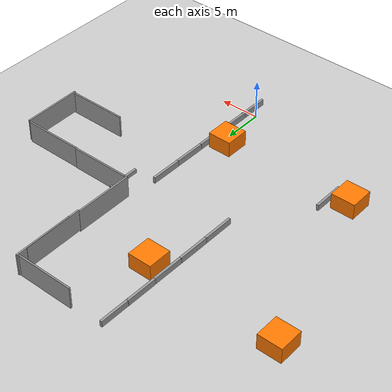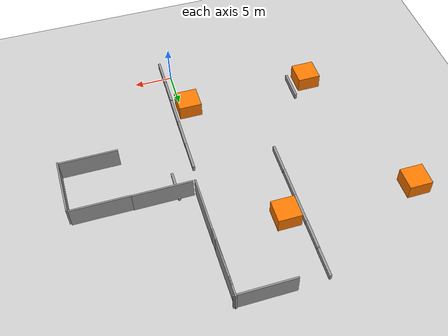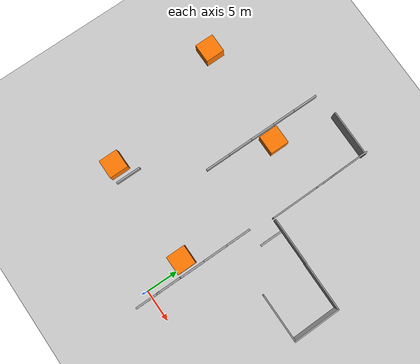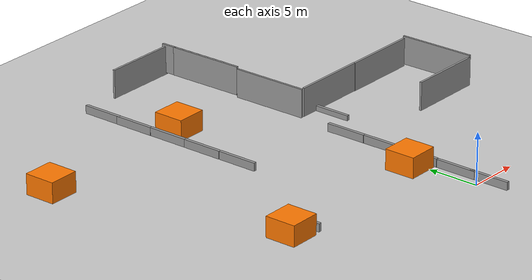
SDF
<sdf version="1.7">
 <world name="default">
  <model name="ground_plane">
   <static>1</static>
   <link name="link">
    <collision name="collision">
     <geometry><plane><normal>0 0 1</normal><size>100 100</size></plane></geometry>
     <surface><friction><ode><mu>100</mu><mu2>50</mu2></ode></friction></surface>
    </collision>
    <visual name="visual">
     <cast_shadows>0</cast_shadows>
     <geometry><plane><normal>0 0 1</normal><size>100 100</size></plane></geometry>
     <material>
      <script><uri>file://media/materials/scripts/gazebo.material</uri><name>Gazebo/Grey</name></script>
     </material>
    </visual>
   </link>
  </model>
  <model name="factory_machines">
   <link name="link_0">
    <inertial>
     <mass>1</mass>
     <inertia>
      <ixx>0.166667</ixx>
      <ixy>0</ixy>
      <ixz>0</ixz>
      <iyy>0.166667</iyy>
      <iyz>0</iyz>
      <izz>0.166667</izz>
     </inertia>
    </inertial>
    <pose>5.10465 10.3846 0 0 -0 0</pose>
    <visual name="visual">
     <geometry><box><size>3 3 2</size></box></geometry>
     <material>
      <lighting>1</lighting>
      <script><uri>file://media/materials/scripts/gazebo.material</uri><name>Gazebo/Grey</name></script>
      <shader type="pixel"><normal_map>__default__</normal_map></shader>
      <ambient>1 0.471 0 1</ambient>
      <diffuse>0.7 0.7 0.7 1</diffuse>
      <specular>0.01 0.01 0.01 1</specular>
      <emissive>0 0 0 1</emissive>
     </material>
    </visual>
    <collision name="collision">
     <geometry><box><size>3 3 2</size></box></geometry>
     <surface>
      <friction>
       <ode><mu>1</mu><mu2>1</mu2><fdir1>0 0 0</fdir1><slip1>0</slip1><slip2>0</slip2></ode>
       <torsional>
        <coefficient>1</coefficient>
        <patch_radius>0</patch_radius>
        <surface_radius>0</surface_radius>
        <use_patch_radius>1</use_patch_radius>
        <ode><slip>0</slip></ode>
       </torsional>
      </friction>
      <bounce><restitution_coefficient>0</restitution_coefficient><threshold>1e+06</threshold></bounce>
      <contact>
       <collide_without_contact>0</collide_without_contact>
       <collide_without_contact_bitmask>1</collide_without_contact_bitmask>
       <collide_bitmask>1</collide_bitmask>
       <ode>
        <soft_cfm>0</soft_cfm>
        <soft_erp>0.2</soft_erp>
        <kp>1e+13</kp>
        <kd>1</kd>
        <max_vel>0.01</max_vel>
        <min_depth>0</min_depth>
       </ode>
       <bullet>
        <split_impulse>1</split_impulse>
        <split_impulse_penetration_threshold>-0.01</split_impulse_penetration_threshold>
        <soft_cfm>0</soft_cfm>
        <soft_erp>0.2</soft_erp>
        <kp>1e+13</kp>
        <kd>1</kd>
       </bullet>
      </contact>
     </surface>
    </collision>
   </link>
   <link name="link_0_clone">
    <inertial>
     <mass>1</mass>
     <inertia>
      <ixx>0.166667</ixx>
      <ixy>0</ixy>
      <ixz>0</ixz>
      <iyy>0.166667</iyy>
      <iyz>0</iyz>
      <izz>0.166667</izz>
     </inertia>
    </inertial>
    <pose>11.7 -10.343 0 0 -0 0</pose>
    <visual name="visual">
     <geometry><box><size>3 3 2</size></box></geometry>
     <material>
      <lighting>1</lighting>
      <script><uri>file://media/materials/scripts/gazebo.material</uri><name>Gazebo/Grey</name></script>
      <shader type="pixel"><normal_map>__default__</normal_map></shader>
      <ambient>1 0.471 0 1</ambient>
      <diffuse>0.7 0.7 0.7 1</diffuse>
      <specular>0.01 0.01 0.01 1</specular>
      <emissive>0 0 0 1</emissive>
     </material>
    </visual>
    <collision name="collision">
     <geometry><box><size>3 3 2</size></box></geometry>
     <surface>
      <friction>
       <ode><mu>1</mu><mu2>1</mu2><fdir1>0 0 0</fdir1><slip1>0</slip1><slip2>0</slip2></ode>
       <torsional>
        <coefficient>1</coefficient>
        <patch_radius>0</patch_radius>
        <surface_radius>0</surface_radius>
        <use_patch_radius>1</use_patch_radius>
        <ode><slip>0</slip></ode>
       </torsional>
      </friction>
      <bounce><restitution_coefficient>0</restitution_coefficient><threshold>1e+06</threshold></bounce>
      <contact>
       <collide_without_contact>0</collide_without_contact>
       <collide_without_contact_bitmask>1</collide_without_contact_bitmask>
       <collide_bitmask>1</collide_bitmask>
       <ode>
        <soft_cfm>0</soft_cfm>
        <soft_erp>0.2</soft_erp>
        <kp>1e+13</kp>
        <kd>1</kd>
        <max_vel>0.01</max_vel>
        <min_depth>0</min_depth>
       </ode>
       <bullet>
        <split_impulse>1</split_impulse>
        <split_impulse_penetration_threshold>-0.01</split_impulse_penetration_threshold>
        <soft_cfm>0</soft_cfm>
        <soft_erp>0.2</soft_erp>
        <kp>1e+13</kp>
        <kd>1</kd>
       </bullet>
      </contact>
     </surface>
    </collision>
   </link>
   <link name="link_0_clone_0">
    <inertial>
     <mass>1</mass>
     <inertia>
      <ixx>0.166667</ixx>
      <ixy>0</ixy>
      <ixz>0</ixz>
      <iyy>0.166667</iyy>
      <iyz>0</iyz>
      <izz>0.166667</izz>
     </inertia>
    </inertial>
    <pose>-5.21258 -10.6315 0 0 -0 0</pose>
    <visual name="visual">
     <geometry><box><size>3 3 2</size></box></geometry>
     <material>
      <lighting>1</lighting>
      <script><uri>file://media/materials/scripts/gazebo.material</uri><name>Gazebo/Grey</name></script>
      <shader type="pixel"><normal_map>__default__</normal_map></shader>
      <ambient>1 0.471 0 1</ambient>
      <diffuse>0.7 0.7 0.7 1</diffuse>
      <specular>0.01 0.01 0.01 1</specular>
      <emissive>0 0 0 1</emissive>
     </material>
    </visual>
    <collision name="collision">
     <geometry><box><size>3 3 2</size></box></geometry>
     <surface>
      <friction>
       <ode><mu>1</mu><mu2>1</mu2><fdir1>0 0 0</fdir1><slip1>0</slip1><slip2>0</slip2></ode>
       <torsional>
        <coefficient>1</coefficient>
        <patch_radius>0</patch_radius>
        <surface_radius>0</surface_radius>
        <use_patch_radius>1</use_patch_radius>
        <ode><slip>0</slip></ode>
       </torsional>
      </friction>
      <bounce><restitution_coefficient>0</restitution_coefficient><threshold>1e+06</threshold></bounce>
      <contact>
       <collide_without_contact>0</collide_without_contact>
       <collide_without_contact_bitmask>1</collide_without_contact_bitmask>
       <collide_bitmask>1</collide_bitmask>
       <ode>
        <soft_cfm>0</soft_cfm>
        <soft_erp>0.2</soft_erp>
        <kp>1e+13</kp>
        <kd>1</kd>
        <max_vel>0.01</max_vel>
        <min_depth>0</min_depth>
       </ode>
       <bullet>
        <split_impulse>1</split_impulse>
        <split_impulse_penetration_threshold>-0.01</split_impulse_penetration_threshold>
        <soft_cfm>0</soft_cfm>
        <soft_erp>0.2</soft_erp>
        <kp>1e+13</kp>
        <kd>1</kd>
       </bullet>
      </contact>
     </surface>
    </collision>
   </link>
   <link name="link_0_clone_1">
    <inertial>
     <mass>1</mass>
     <inertia>
      <ixx>0.166667</ixx>
      <ixy>0</ixy>
      <ixz>0</ixz>
      <iyy>0.166667</iyy>
      <iyz>0</iyz>
      <izz>0.166667</izz>
     </inertia>
    </inertial>
    <pose>-11.592 10.59 0 0 -0 0</pose>
    <visual name="visual">
     <geometry><box><size>3 3 2</size></box></geometry>
     <material>
      <lighting>1</lighting>
      <script><uri>file://media/materials/scripts/gazebo.material</uri><name>Gazebo/Grey</name></script>
      <shader type="pixel"><normal_map>__default__</normal_map></shader>
      <ambient>1 0.471 0 1</ambient>
      <diffuse>0.7 0.7 0.7 1</diffuse>
      <specular>0.01 0.01 0.01 1</specular>
      <emissive>0 0 0 1</emissive>
     </material>
    </visual>
    <collision name="collision">
     <geometry><box><size>3 3 2</size></box></geometry>
     <surface>
      <friction>
       <ode><mu>1</mu><mu2>1</mu2><fdir1>0 0 0</fdir1><slip1>0</slip1><slip2>0</slip2></ode>
       <torsional>
        <coefficient>1</coefficient>
        <patch_radius>0</patch_radius>
        <surface_radius>0</surface_radius>
        <use_patch_radius>1</use_patch_radius>
        <ode><slip>0</slip></ode>
       </torsional>
      </friction>
      <bounce><restitution_coefficient>0</restitution_coefficient><threshold>1e+06</threshold></bounce>
      <contact>
       <collide_without_contact>0</collide_without_contact>
       <collide_without_contact_bitmask>1</collide_without_contact_bitmask>
       <collide_bitmask>1</collide_bitmask>
       <ode>
        <soft_cfm>0</soft_cfm>
        <soft_erp>0.2</soft_erp>
        <kp>1e+13</kp>
        <kd>1</kd>
        <max_vel>0.01</max_vel>
        <min_depth>0</min_depth>
       </ode>
       <bullet>
        <split_impulse>1</split_impulse>
        <split_impulse_penetration_threshold>-0.01</split_impulse_penetration_threshold>
        <soft_cfm>0</soft_cfm>
        <soft_erp>0.2</soft_erp>
        <kp>1e+13</kp>
        <kd>1</kd>
       </bullet>
      </contact>
     </surface>
    </collision>
   </link>
   <static>0</static>
   <pose>-12.6539 16.8628 0.999939 -0 -9e-06 0.003009</pose>
  </model>
  <model name="grey_wall">
   <static>1</static>
   <link name="link">
    <pose>0 0 1.4 0 -0 0</pose>
    <collision name="collision"><geometry><box><size>7.5 0.2 2.8</size></box></geometry></collision>
    <visual name="visual">
     <cast_shadows>0</cast_shadows>
     <geometry><box><size>7.5 0.2 2.8</size></box></geometry>
     <material>
      <script>
       <uri>model://grey_wall/materials/scripts</uri>
       <uri>model://grey_wall/materials/textures</uri>
       <name>vrc/grey_wall</name>
      </script>
     </material>
    </visual>
   </link>
   <pose>1.65384 24.3462 0 0 0 -1.56374</pose>
  </model>
  <model name="grey_wall_0">
   <static>1</static>
   <link name="link">
    <pose>0 0 1.4 0 -0 0</pose>
    <collision name="collision"><geometry><box><size>7.5 0.2 2.8</size></box></geometry></collision>
    <visual name="visual">
     <cast_shadows>0</cast_shadows>
     <geometry><box><size>7.5 0.2 2.8</size></box></geometry>
     <material>
      <script>
       <uri>model://grey_wall/materials/scripts</uri>
       <uri>model://grey_wall/materials/textures</uri>
       <name>vrc/grey_wall</name>
      </script>
     </material>
    </visual>
   </link>
   <pose>5.71873 20.6971 0 0 -0 0</pose>
  </model>
  <model name="grey_wall_1">
   <static>1</static>
   <link name="link">
    <pose>0 0 1.4 0 -0 0</pose>
    <collision name="collision"><geometry><box><size>7.5 0.2 2.8</size></box></geometry></collision>
    <visual name="visual">
     <cast_shadows>0</cast_shadows>
     <geometry><box><size>7.5 0.2 2.8</size></box></geometry>
     <material>
      <script>
       <uri>model://grey_wall/materials/scripts</uri>
       <uri>model://grey_wall/materials/textures</uri>
       <name>vrc/grey_wall</name>
      </script>
     </material>
    </visual>
   </link>
   <pose>1.57168 31.856 0.19567 0 0 -1.55567</pose>
  </model>
  <model name="grey_wall_1_clone">
   <static>1</static>
   <link name="link">
    <pose>0 0 1.4 0 -0 0</pose>
    <collision name="collision"><geometry><box><size>7.5 0.2 2.8</size></box></geometry></collision>
    <visual name="visual">
     <cast_shadows>0</cast_shadows>
     <geometry><box><size>7.5 0.2 2.8</size></box></geometry>
     <material>
      <script>
       <uri>model://grey_wall/materials/scripts</uri>
       <uri>model://grey_wall/materials/textures</uri>
       <name>vrc/grey_wall</name>
      </script>
     </material>
    </visual>
   </link>
   <pose>17.0679 16.9633 0.19567 0 0 -1.55567</pose>
  </model>
  <model name="grey_wall_0_clone">
   <static>1</static>
   <link name="link">
    <pose>0 0 1.4 0 -0 0</pose>
    <collision name="collision"><geometry><box><size>7.5 0.2 2.8</size></box></geometry></collision>
    <visual name="visual">
     <cast_shadows>0</cast_shadows>
     <geometry><box><size>7.5 0.2 2.8</size></box></geometry>
     <material>
      <script>
       <uri>model://grey_wall/materials/scripts</uri>
       <uri>model://grey_wall/materials/textures</uri>
       <name>vrc/grey_wall</name>
      </script>
     </material>
    </visual>
   </link>
   <pose>-1.96273 36.6456 0 0 -0 0</pose>
  </model>
  <model name="grey_wall_0_clone_0">
   <static>1</static>
   <link name="link">
    <pose>0 0 1.4 0 -0 0</pose>
    <collision name="collision"><geometry><box><size>7.5 0.2 2.8</size></box></geometry></collision>
    <visual name="visual">
     <cast_shadows>0</cast_shadows>
     <geometry><box><size>7.5 0.2 2.8</size></box></geometry>
     <material>
      <script>
       <uri>model://grey_wall/materials/scripts</uri>
       <uri>model://grey_wall/materials/textures</uri>
       <name>vrc/grey_wall</name>
      </script>
     </material>
    </visual>
   </link>
   <pose>13.1639 20.6474 0 0 -0 0</pose>
  </model>
  <model name="grey_wall_0_clone_1">
   <static>1</static>
   <link name="link">
    <pose>0 0 1.4 0 -0 0</pose>
    <collision name="collision"><geometry><box><size>7.5 0.2 2.8</size></box></geometry></collision>
    <visual name="visual">
     <cast_shadows>0</cast_shadows>
     <geometry><box><size>7.5 0.2 2.8</size></box></geometry>
     <material>
      <script>
       <uri>model://grey_wall/materials/scripts</uri>
       <uri>model://grey_wall/materials/textures</uri>
       <name>vrc/grey_wall</name>
      </script>
     </material>
    </visual>
   </link>
   <pose>13.4269 13.2768 0 0 -0 0</pose>
  </model>
  <model name="grey_wall_1_clone_0">
   <static>1</static>
   <link name="link">
    <pose>0 0 1.4 0 -0 0</pose>
    <collision name="collision"><geometry><box><size>7.5 0.2 2.8</size></box></geometry></collision>
    <visual name="visual">
     <cast_shadows>0</cast_shadows>
     <geometry><box><size>7.5 0.2 2.8</size></box></geometry>
     <material>
      <script>
       <uri>model://grey_wall/materials/scripts</uri>
       <uri>model://grey_wall/materials/textures</uri>
       <name>vrc/grey_wall</name>
      </script>
     </material>
    </visual>
   </link>
   <pose>1.57176 33.2174 0.19567 0 0 -1.55567</pose>
  </model>
  <model name="conveyor_fill">
   <link name="link">
    <inertial>
     <mass>1</mass>
     <inertia>
      <ixx>0.166667</ixx>
      <ixy>0</ixy>
      <ixz>0</ixz>
      <iyy>0.166667</iyy>
      <iyz>0</iyz>
      <izz>0.166667</izz>
     </inertia>
    </inertial>
    <pose>0 0 -0.277043 0 -0 0</pose>
    <visual name="visual">
     <geometry><box><size>0.3 4 0.5</size></box></geometry>
     <material>
      <script><name>Gazebo/Grey</name><uri>file://media/materials/scripts/gazebo.material</uri></script>
      <shader type="pixel"><normal_map>__default__</normal_map></shader>
      <ambient>0.3 0.3 0.3 1</ambient>
      <diffuse>0.7 0.7 0.7 1</diffuse>
      <specular>0.01 0.01 0.01 1</specular>
      <emissive>0 0 0 1</emissive>
     </material>
    </visual>
    <collision name="collision">
     <geometry><box><size>0.3 4 0.5</size></box></geometry>
     <surface>
      <friction>
       <ode><mu>1</mu><mu2>1</mu2><fdir1>0 0 0</fdir1><slip1>0</slip1><slip2>0</slip2></ode>
       <torsional>
        <coefficient>1</coefficient>
        <patch_radius>0</patch_radius>
        <surface_radius>0</surface_radius>
        <use_patch_radius>1</use_patch_radius>
        <ode><slip>0</slip></ode>
       </torsional>
      </friction>
      <bounce><restitution_coefficient>0</restitution_coefficient><threshold>1e+06</threshold></bounce>
      <contact>
       <collide_without_contact>0</collide_without_contact>
       <collide_without_contact_bitmask>1</collide_without_contact_bitmask>
       <collide_bitmask>1</collide_bitmask>
       <ode>
        <soft_cfm>0</soft_cfm>
        <soft_erp>0.2</soft_erp>
        <kp>1e+13</kp>
        <kd>1</kd>
        <max_vel>0.01</max_vel>
        <min_depth>0</min_depth>
       </ode>
       <bullet>
        <split_impulse>1</split_impulse>
        <split_impulse_penetration_threshold>-0.01</split_impulse_penetration_threshold>
        <soft_cfm>0</soft_cfm>
        <soft_erp>0.2</soft_erp>
        <kp>1e+13</kp>
        <kd>1</kd>
       </bullet>
      </contact>
     </surface>
    </collision>
   </link>
   <static>0</static>
   <pose>3.87789 19.029 0.5 0 0 -0.00195</pose>
  </model>
  <model name="conveyor_fill_taller">
   <link name="link">
    <inertial>
     <mass>1</mass>
     <inertia>
      <ixx>0.166667</ixx>
      <ixy>0</ixy>
      <ixz>0</ixz>
      <iyy>0.166667</iyy>
      <iyz>0</iyz>
      <izz>0.166667</izz>
     </inertia>
    </inertial>
    <pose>0 0 -0.277043 0 -0 0</pose>
    <visual name="visual">
     <geometry><box><size>0.3 4 1</size></box></geometry>
     <material>
      <script><name>Gazebo/Grey</name><uri>file://media/materials/scripts/gazebo.material</uri></script>
      <shader type="pixel"><normal_map>__default__</normal_map></shader>
      <ambient>0.3 0.3 0.3 1</ambient>
      <diffuse>0.7 0.7 0.7 1</diffuse>
      <specular>0.01 0.01 0.01 1</specular>
      <emissive>0 0 0 1</emissive>
     </material>
    </visual>
    <collision name="collision">
     <geometry><box><size>0.3 4 1</size></box></geometry>
     <surface>
      <friction>
       <ode><mu>1</mu><mu2>1</mu2><fdir1>0 0 0</fdir1><slip1>0</slip1><slip2>0</slip2></ode>
       <torsional>
        <coefficient>1</coefficient>
        <patch_radius>0</patch_radius>
        <surface_radius>0</surface_radius>
        <use_patch_radius>1</use_patch_radius>
        <ode><slip>0</slip></ode>
       </torsional>
      </friction>
      <bounce><restitution_coefficient>0</restitution_coefficient><threshold>1e+06</threshold></bounce>
      <contact>
       <collide_without_contact>0</collide_without_contact>
       <collide_without_contact_bitmask>1</collide_without_contact_bitmask>
       <collide_bitmask>1</collide_bitmask>
       <ode>
        <soft_cfm>0</soft_cfm>
        <soft_erp>0.2</soft_erp>
        <kp>1e+13</kp>
        <kd>1</kd>
        <max_vel>0.01</max_vel>
        <min_depth>0</min_depth>
       </ode>
       <bullet>
        <split_impulse>1</split_impulse>
        <split_impulse_penetration_threshold>-0.01</split_impulse_penetration_threshold>
        <soft_cfm>0</soft_cfm>
        <soft_erp>0.2</soft_erp>
        <kp>1e+13</kp>
        <kd>1</kd>
       </bullet>
      </contact>
     </surface>
    </collision>
   </link>
   <static>0</static>
   <pose>1.04516 15.0369 0.5 0 0 -0.00195</pose>
  </model>
  <model name="conveyor_fill_taller_clone">
   <link name="link">
    <inertial>
     <mass>1</mass>
     <inertia>
      <ixx>0.166667</ixx>
      <ixy>0</ixy>
      <ixz>0</ixz>
      <iyy>0.166667</iyy>
      <iyz>0</iyz>
      <izz>0.166667</izz>
     </inertia>
    </inertial>
    <pose>0 0 -0.277043 0 -0 0</pose>
    <visual name="visual">
     <geometry><box><size>0.3 4 1</size></box></geometry>
     <material>
      <script><name>Gazebo/Grey</name><uri>file://media/materials/scripts/gazebo.material</uri></script>
      <shader type="pixel"><normal_map>__default__</normal_map></shader>
      <ambient>0.3 0.3 0.3 1</ambient>
      <diffuse>0.7 0.7 0.7 1</diffuse>
      <specular>0.01 0.01 0.01 1</specular>
      <emissive>0 0 0 1</emissive>
     </material>
    </visual>
    <collision name="collision">
     <geometry><box><size>0.3 4 1</size></box></geometry>
     <surface>
      <friction>
       <ode><mu>1</mu><mu2>1</mu2><fdir1>0 0 0</fdir1><slip1>0</slip1><slip2>0</slip2></ode>
       <torsional>
        <coefficient>1</coefficient>
        <patch_radius>0</patch_radius>
        <surface_radius>0</surface_radius>
        <use_patch_radius>1</use_patch_radius>
        <ode><slip>0</slip></ode>
       </torsional>
      </friction>
      <bounce><restitution_coefficient>0</restitution_coefficient><threshold>1e+06</threshold></bounce>
      <contact>
       <collide_without_contact>0</collide_without_contact>
       <collide_without_contact_bitmask>1</collide_without_contact_bitmask>
       <collide_bitmask>1</collide_bitmask>
       <ode>
        <soft_cfm>0</soft_cfm>
        <soft_erp>0.2</soft_erp>
        <kp>1e+13</kp>
        <kd>1</kd>
        <max_vel>0.01</max_vel>
        <min_depth>0</min_depth>
       </ode>
       <bullet>
        <split_impulse>1</split_impulse>
        <split_impulse_penetration_threshold>-0.01</split_impulse_penetration_threshold>
        <soft_cfm>0</soft_cfm>
        <soft_erp>0.2</soft_erp>
        <kp>1e+13</kp>
        <kd>1</kd>
       </bullet>
      </contact>
     </surface>
    </collision>
   </link>
   <static>0</static>
   <pose>1.05424 11.0232 0.5 0 0 -0.00195</pose>
  </model>
  <model name="conveyor_fill_taller_clone_0">
   <link name="link">
    <inertial>
     <mass>1</mass>
     <inertia>
      <ixx>0.166667</ixx>
      <ixy>0</ixy>
      <ixz>0</ixz>
      <iyy>0.166667</iyy>
      <iyz>0</iyz>
      <izz>0.166667</izz>
     </inertia>
    </inertial>
    <pose>0 0 -0.277043 0 -0 0</pose>
    <visual name="visual">
     <geometry><box><size>0.3 4 1</size></box></geometry>
     <material>
      <script><name>Gazebo/Grey</name><uri>file://media/materials/scripts/gazebo.material</uri></script>
      <shader type="pixel"><normal_map>__default__</normal_map></shader>
      <ambient>0.3 0.3 0.3 1</ambient>
      <diffuse>0.7 0.7 0.7 1</diffuse>
      <specular>0.01 0.01 0.01 1</specular>
      <emissive>0 0 0 1</emissive>
     </material>
    </visual>
    <collision name="collision">
     <geometry><box><size>0.3 4 1</size></box></geometry>
     <surface>
      <friction>
       <ode><mu>1</mu><mu2>1</mu2><fdir1>0 0 0</fdir1><slip1>0</slip1><slip2>0</slip2></ode>
       <torsional>
        <coefficient>1</coefficient>
        <patch_radius>0</patch_radius>
        <surface_radius>0</surface_radius>
        <use_patch_radius>1</use_patch_radius>
        <ode><slip>0</slip></ode>
       </torsional>
      </friction>
      <bounce><restitution_coefficient>0</restitution_coefficient><threshold>1e+06</threshold></bounce>
      <contact>
       <collide_without_contact>0</collide_without_contact>
       <collide_without_contact_bitmask>1</collide_without_contact_bitmask>
       <collide_bitmask>1</collide_bitmask>
       <ode>
        <soft_cfm>0</soft_cfm>
        <soft_erp>0.2</soft_erp>
        <kp>1e+13</kp>
        <kd>1</kd>
        <max_vel>0.01</max_vel>
        <min_depth>0</min_depth>
       </ode>
       <bullet>
        <split_impulse>1</split_impulse>
        <split_impulse_penetration_threshold>-0.01</split_impulse_penetration_threshold>
        <soft_cfm>0</soft_cfm>
        <soft_erp>0.2</soft_erp>
        <kp>1e+13</kp>
        <kd>1</kd>
       </bullet>
      </contact>
     </surface>
    </collision>
   </link>
   <static>0</static>
   <pose>1.06589 7.00669 0.5 0 0 -0.00195</pose>
  </model>
  <model name="conveyor_fill_taller_clone_1">
   <link name="link">
    <inertial>
     <mass>1</mass>
     <inertia>
      <ixx>0.166667</ixx>
      <ixy>0</ixy>
      <ixz>0</ixz>
      <iyy>0.166667</iyy>
      <iyz>0</iyz>
      <izz>0.166667</izz>
     </inertia>
    </inertial>
    <pose>0 0 -0.277043 0 -0 0</pose>
    <visual name="visual">
     <geometry><box><size>0.3 4 1</size></box></geometry>
     <material>
      <script><name>Gazebo/Grey</name><uri>file://media/materials/scripts/gazebo.material</uri></script>
      <shader type="pixel"><normal_map>__default__</normal_map></shader>
      <ambient>0.3 0.3 0.3 1</ambient>
      <diffuse>0.7 0.7 0.7 1</diffuse>
      <specular>0.01 0.01 0.01 1</specular>
      <emissive>0 0 0 1</emissive>
     </material>
    </visual>
    <collision name="collision">
     <geometry><box><size>0.3 4 1</size></box></geometry>
     <surface>
      <friction>
       <ode><mu>1</mu><mu2>1</mu2><fdir1>0 0 0</fdir1><slip1>0</slip1><slip2>0</slip2></ode>
       <torsional>
        <coefficient>1</coefficient>
        <patch_radius>0</patch_radius>
        <surface_radius>0</surface_radius>
        <use_patch_radius>1</use_patch_radius>
        <ode><slip>0</slip></ode>
       </torsional>
      </friction>
      <bounce><restitution_coefficient>0</restitution_coefficient><threshold>1e+06</threshold></bounce>
      <contact>
       <collide_without_contact>0</collide_without_contact>
       <collide_without_contact_bitmask>1</collide_without_contact_bitmask>
       <collide_bitmask>1</collide_bitmask>
       <ode>
        <soft_cfm>0</soft_cfm>
        <soft_erp>0.2</soft_erp>
        <kp>1e+13</kp>
        <kd>1</kd>
        <max_vel>0.01</max_vel>
        <min_depth>0</min_depth>
       </ode>
       <bullet>
        <split_impulse>1</split_impulse>
        <split_impulse_penetration_threshold>-0.01</split_impulse_penetration_threshold>
        <soft_cfm>0</soft_cfm>
        <soft_erp>0.2</soft_erp>
        <kp>1e+13</kp>
        <kd>1</kd>
       </bullet>
      </contact>
     </surface>
    </collision>
   </link>
   <static>0</static>
   <pose>1.02367 2.91712 0.5 0 0 -0.00195</pose>
  </model>
  <model name="conveyor_fill_taller_clone_2">
   <link name="link">
    <inertial>
     <mass>1</mass>
     <inertia>
      <ixx>0.166667</ixx>
      <ixy>0</ixy>
      <ixz>0</ixz>
      <iyy>0.166667</iyy>
      <iyz>0</iyz>
      <izz>0.166667</izz>
     </inertia>
    </inertial>
    <pose>0 0 -0.277043 0 -0 0</pose>
    <visual name="visual">
     <geometry><box><size>0.3 4 1</size></box></geometry>
     <material>
      <script><name>Gazebo/Grey</name><uri>file://media/materials/scripts/gazebo.material</uri></script>
      <shader type="pixel"><normal_map>__default__</normal_map></shader>
      <ambient>0.3 0.3 0.3 1</ambient>
      <diffuse>0.7 0.7 0.7 1</diffuse>
      <specular>0.01 0.01 0.01 1</specular>
      <emissive>0 0 0 1</emissive>
     </material>
    </visual>
    <collision name="collision">
     <geometry><box><size>0.3 4 1</size></box></geometry>
     <surface>
      <friction>
       <ode><mu>1</mu><mu2>1</mu2><fdir1>0 0 0</fdir1><slip1>0</slip1><slip2>0</slip2></ode>
       <torsional>
        <coefficient>1</coefficient>
        <patch_radius>0</patch_radius>
        <surface_radius>0</surface_radius>
        <use_patch_radius>1</use_patch_radius>
        <ode><slip>0</slip></ode>
       </torsional>
      </friction>
      <bounce><restitution_coefficient>0</restitution_coefficient><threshold>1e+06</threshold></bounce>
      <contact>
       <collide_without_contact>0</collide_without_contact>
       <collide_without_contact_bitmask>1</collide_without_contact_bitmask>
       <collide_bitmask>1</collide_bitmask>
       <ode>
        <soft_cfm>0</soft_cfm>
        <soft_erp>0.2</soft_erp>
        <kp>1e+13</kp>
        <kd>1</kd>
        <max_vel>0.01</max_vel>
        <min_depth>0</min_depth>
       </ode>
       <bullet>
        <split_impulse>1</split_impulse>
        <split_impulse_penetration_threshold>-0.01</split_impulse_penetration_threshold>
        <soft_cfm>0</soft_cfm>
        <soft_erp>0.2</soft_erp>
        <kp>1e+13</kp>
        <kd>1</kd>
       </bullet>
      </contact>
     </surface>
    </collision>
   </link>
   <static>0</static>
   <pose>1.03614 -0.577012 0.5 0 0 -0.00195</pose>
  </model>
  <model name="conveyor_fill_taller_clone_3">
   <link name="link">
    <inertial>
     <mass>1</mass>
     <inertia>
      <ixx>0.166667</ixx>
      <ixy>0</ixy>
      <ixz>0</ixz>
      <iyy>0.166667</iyy>
      <iyz>0</iyz>
      <izz>0.166667</izz>
     </inertia>
    </inertial>
    <pose>0 0 -0.277043 0 -0 0</pose>
    <visual name="visual">
     <geometry><box><size>0.3 4 1</size></box></geometry>
     <material>
      <script><name>Gazebo/Grey</name><uri>file://media/materials/scripts/gazebo.material</uri></script>
      <shader type="pixel"><normal_map>__default__</normal_map></shader>
      <ambient>0.3 0.3 0.3 1</ambient>
      <diffuse>0.7 0.7 0.7 1</diffuse>
      <specular>0.01 0.01 0.01 1</specular>
      <emissive>0 0 0 1</emissive>
     </material>
    </visual>
    <collision name="collision">
     <geometry><box><size>0.3 4 1</size></box></geometry>
     <surface>
      <friction>
       <ode><mu>1</mu><mu2>1</mu2><fdir1>0 0 0</fdir1><slip1>0</slip1><slip2>0</slip2></ode>
       <torsional>
        <coefficient>1</coefficient>
        <patch_radius>0</patch_radius>
        <surface_radius>0</surface_radius>
        <use_patch_radius>1</use_patch_radius>
        <ode><slip>0</slip></ode>
       </torsional>
      </friction>
      <bounce><restitution_coefficient>0</restitution_coefficient><threshold>1e+06</threshold></bounce>
      <contact>
       <collide_without_contact>0</collide_without_contact>
       <collide_without_contact_bitmask>1</collide_without_contact_bitmask>
       <collide_bitmask>1</collide_bitmask>
       <ode>
        <soft_cfm>0</soft_cfm>
        <soft_erp>0.2</soft_erp>
        <kp>1e+13</kp>
        <kd>1</kd>
        <max_vel>0.01</max_vel>
        <min_depth>0</min_depth>
       </ode>
       <bullet>
        <split_impulse>1</split_impulse>
        <split_impulse_penetration_threshold>-0.01</split_impulse_penetration_threshold>
        <soft_cfm>0</soft_cfm>
        <soft_erp>0.2</soft_erp>
        <kp>1e+13</kp>
        <kd>1</kd>
       </bullet>
      </contact>
     </surface>
    </collision>
   </link>
   <static>0</static>
   <pose>-9.62534 18.814 0.5 0 0 -0.00195</pose>
  </model>
  <model name="conveyor_fill_taller_clone_4">
   <link name="link">
    <inertial>
     <mass>1</mass>
     <inertia>
      <ixx>0.166667</ixx>
      <ixy>0</ixy>
      <ixz>0</ixz>
      <iyy>0.166667</iyy>
      <iyz>0</iyz>
      <izz>0.166667</izz>
     </inertia>
    </inertial>
    <pose>0 0 -0.277043 0 -0 0</pose>
    <visual name="visual">
     <geometry><box><size>0.3 4 1</size></box></geometry>
     <material>
      <script><name>Gazebo/Grey</name><uri>file://media/materials/scripts/gazebo.material</uri></script>
      <shader type="pixel"><normal_map>__default__</normal_map></shader>
      <ambient>0.3 0.3 0.3 1</ambient>
      <diffuse>0.7 0.7 0.7 1</diffuse>
      <specular>0.01 0.01 0.01 1</specular>
      <emissive>0 0 0 1</emissive>
     </material>
    </visual>
    <collision name="collision">
     <geometry><box><size>0.3 4 1</size></box></geometry>
     <surface>
      <friction>
       <ode><mu>1</mu><mu2>1</mu2><fdir1>0 0 0</fdir1><slip1>0</slip1><slip2>0</slip2></ode>
       <torsional>
        <coefficient>1</coefficient>
        <patch_radius>0</patch_radius>
        <surface_radius>0</surface_radius>
        <use_patch_radius>1</use_patch_radius>
        <ode><slip>0</slip></ode>
       </torsional>
      </friction>
      <bounce><restitution_coefficient>0</restitution_coefficient><threshold>1e+06</threshold></bounce>
      <contact>
       <collide_without_contact>0</collide_without_contact>
       <collide_without_contact_bitmask>1</collide_without_contact_bitmask>
       <collide_bitmask>1</collide_bitmask>
       <ode>
        <soft_cfm>0</soft_cfm>
        <soft_erp>0.2</soft_erp>
        <kp>1e+13</kp>
        <kd>1</kd>
        <max_vel>0.01</max_vel>
        <min_depth>0</min_depth>
       </ode>
       <bullet>
        <split_impulse>1</split_impulse>
        <split_impulse_penetration_threshold>-0.01</split_impulse_penetration_threshold>
        <soft_cfm>0</soft_cfm>
        <soft_erp>0.2</soft_erp>
        <kp>1e+13</kp>
        <kd>1</kd>
       </bullet>
      </contact>
     </surface>
    </collision>
   </link>
   <static>0</static>
   <pose>-9.63321 22.8012 0.5 0 0 -0.00195</pose>
  </model>
  <model name="conveyor_fill_taller_clone_5">
   <link name="link">
    <inertial>
     <mass>1</mass>
     <inertia>
      <ixx>0.166667</ixx>
      <ixy>0</ixy>
      <ixz>0</ixz>
      <iyy>0.166667</iyy>
      <iyz>0</iyz>
      <izz>0.166667</izz>
     </inertia>
    </inertial>
    <pose>0 0 -0.277043 0 -0 0</pose>
    <visual name="visual">
     <geometry><box><size>0.3 4 1</size></box></geometry>
     <material>
      <script><name>Gazebo/Grey</name><uri>file://media/materials/scripts/gazebo.material</uri></script>
      <shader type="pixel"><normal_map>__default__</normal_map></shader>
      <ambient>0.3 0.3 0.3 1</ambient>
      <diffuse>0.7 0.7 0.7 1</diffuse>
      <specular>0.01 0.01 0.01 1</specular>
      <emissive>0 0 0 1</emissive>
     </material>
    </visual>
    <collision name="collision">
     <geometry><box><size>0.3 4 1</size></box></geometry>
     <surface>
      <friction>
       <ode><mu>1</mu><mu2>1</mu2><fdir1>0 0 0</fdir1><slip1>0</slip1><slip2>0</slip2></ode>
       <torsional>
        <coefficient>1</coefficient>
        <patch_radius>0</patch_radius>
        <surface_radius>0</surface_radius>
        <use_patch_radius>1</use_patch_radius>
        <ode><slip>0</slip></ode>
       </torsional>
      </friction>
      <bounce><restitution_coefficient>0</restitution_coefficient><threshold>1e+06</threshold></bounce>
      <contact>
       <collide_without_contact>0</collide_without_contact>
       <collide_without_contact_bitmask>1</collide_without_contact_bitmask>
       <collide_bitmask>1</collide_bitmask>
       <ode>
        <soft_cfm>0</soft_cfm>
        <soft_erp>0.2</soft_erp>
        <kp>1e+13</kp>
        <kd>1</kd>
        <max_vel>0.01</max_vel>
        <min_depth>0</min_depth>
       </ode>
       <bullet>
        <split_impulse>1</split_impulse>
        <split_impulse_penetration_threshold>-0.01</split_impulse_penetration_threshold>
        <soft_cfm>0</soft_cfm>
        <soft_erp>0.2</soft_erp>
        <kp>1e+13</kp>
        <kd>1</kd>
       </bullet>
      </contact>
     </surface>
    </collision>
   </link>
   <static>0</static>
   <pose>-9.62178 26.8 0.5 0 0 -0.00195</pose>
  </model>
  <model name="conveyor_fill_taller_clone_6">
   <link name="link">
    <inertial>
     <mass>1</mass>
     <inertia>
      <ixx>0.166667</ixx>
      <ixy>0</ixy>
      <ixz>0</ixz>
      <iyy>0.166667</iyy>
      <iyz>0</iyz>
      <izz>0.166667</izz>
     </inertia>
    </inertial>
    <pose>0 0 -0.277043 0 -0 0</pose>
    <visual name="visual">
     <geometry><box><size>0.3 4 1</size></box></geometry>
     <material>
      <script><name>Gazebo/Grey</name><uri>file://media/materials/scripts/gazebo.material</uri></script>
      <shader type="pixel"><normal_map>__default__</normal_map></shader>
      <ambient>0.3 0.3 0.3 1</ambient>
      <diffuse>0.7 0.7 0.7 1</diffuse>
      <specular>0.01 0.01 0.01 1</specular>
      <emissive>0 0 0 1</emissive>
     </material>
    </visual>
    <collision name="collision">
     <geometry><box><size>0.3 4 1</size></box></geometry>
     <surface>
      <friction>
       <ode><mu>1</mu><mu2>1</mu2><fdir1>0 0 0</fdir1><slip1>0</slip1><slip2>0</slip2></ode>
       <torsional>
        <coefficient>1</coefficient>
        <patch_radius>0</patch_radius>
        <surface_radius>0</surface_radius>
        <use_patch_radius>1</use_patch_radius>
        <ode><slip>0</slip></ode>
       </torsional>
      </friction>
      <bounce><restitution_coefficient>0</restitution_coefficient><threshold>1e+06</threshold></bounce>
      <contact>
       <collide_without_contact>0</collide_without_contact>
       <collide_without_contact_bitmask>1</collide_without_contact_bitmask>
       <collide_bitmask>1</collide_bitmask>
       <ode>
        <soft_cfm>0</soft_cfm>
        <soft_erp>0.2</soft_erp>
        <kp>1e+13</kp>
        <kd>1</kd>
        <max_vel>0.01</max_vel>
        <min_depth>0</min_depth>
       </ode>
       <bullet>
        <split_impulse>1</split_impulse>
        <split_impulse_penetration_threshold>-0.01</split_impulse_penetration_threshold>
        <soft_cfm>0</soft_cfm>
        <soft_erp>0.2</soft_erp>
        <kp>1e+13</kp>
        <kd>1</kd>
       </bullet>
      </contact>
     </surface>
    </collision>
   </link>
   <static>0</static>
   <pose>-9.63448 30.7639 0.5 0 0 -0.00195</pose>
  </model>
  <model name="conveyor_fill_taller_clone_7">
   <link name="link">
    <inertial>
     <mass>1</mass>
     <inertia>
      <ixx>0.166667</ixx>
      <ixy>0</ixy>
      <ixz>0</ixz>
      <iyy>0.166667</iyy>
      <iyz>0</iyz>
      <izz>0.166667</izz>
     </inertia>
    </inertial>
    <pose>0 0 -0.277043 0 -0 0</pose>
    <visual name="visual">
     <geometry><box><size>0.3 4 1</size></box></geometry>
     <material>
      <script><name>Gazebo/Grey</name><uri>file://media/materials/scripts/gazebo.material</uri></script>
      <shader type="pixel"><normal_map>__default__</normal_map></shader>
      <ambient>0.3 0.3 0.3 1</ambient>
      <diffuse>0.7 0.7 0.7 1</diffuse>
      <specular>0.01 0.01 0.01 1</specular>
      <emissive>0 0 0 1</emissive>
     </material>
    </visual>
    <collision name="collision">
     <geometry><box><size>0.3 4 1</size></box></geometry>
     <surface>
      <friction>
       <ode><mu>1</mu><mu2>1</mu2><fdir1>0 0 0</fdir1><slip1>0</slip1><slip2>0</slip2></ode>
       <torsional>
        <coefficient>1</coefficient>
        <patch_radius>0</patch_radius>
        <surface_radius>0</surface_radius>
        <use_patch_radius>1</use_patch_radius>
        <ode><slip>0</slip></ode>
       </torsional>
      </friction>
      <bounce><restitution_coefficient>0</restitution_coefficient><threshold>1e+06</threshold></bounce>
      <contact>
       <collide_without_contact>0</collide_without_contact>
       <collide_without_contact_bitmask>1</collide_without_contact_bitmask>
       <collide_bitmask>1</collide_bitmask>
       <ode>
        <soft_cfm>0</soft_cfm>
        <soft_erp>0.2</soft_erp>
        <kp>1e+13</kp>
        <kd>1</kd>
        <max_vel>0.01</max_vel>
        <min_depth>0</min_depth>
       </ode>
       <bullet>
        <split_impulse>1</split_impulse>
        <split_impulse_penetration_threshold>-0.01</split_impulse_penetration_threshold>
        <soft_cfm>0</soft_cfm>
        <soft_erp>0.2</soft_erp>
        <kp>1e+13</kp>
        <kd>1</kd>
       </bullet>
      </contact>
     </surface>
    </collision>
   </link>
   <static>0</static>
   <pose>-9.61462 34.4916 0.5 0 0 -0.00195</pose>
  </model>
  <model name="conveyor_fill_taller_clone_10">
   <link name="link">
    <inertial>
     <mass>1</mass>
     <inertia>
      <ixx>0.166667</ixx>
      <ixy>0</ixy>
      <ixz>0</ixz>
      <iyy>0.166667</iyy>
      <iyz>0</iyz>
      <izz>0.166667</izz>
     </inertia>
    </inertial>
    <pose>0 0 -0.277043 0 -0 0</pose>
    <visual name="visual">
     <geometry><box><size>0.3 4 1</size></box></geometry>
     <material>
      <script><name>Gazebo/Grey</name><uri>file://media/materials/scripts/gazebo.material</uri></script>
      <shader type="pixel"><normal_map>__default__</normal_map></shader>
      <ambient>0.3 0.3 0.3 1</ambient>
      <diffuse>0.7 0.7 0.7 1</diffuse>
      <specular>0.01 0.01 0.01 1</specular>
      <emissive>0 0 0 1</emissive>
     </material>
    </visual>
    <collision name="collision">
     <geometry><box><size>0.3 4 1</size></box></geometry>
     <surface>
      <friction>
       <ode><mu>1</mu><mu2>1</mu2><fdir1>0 0 0</fdir1><slip1>0</slip1><slip2>0</slip2></ode>
       <torsional>
        <coefficient>1</coefficient>
        <patch_radius>0</patch_radius>
        <surface_radius>0</surface_radius>
        <use_patch_radius>1</use_patch_radius>
        <ode><slip>0</slip></ode>
       </torsional>
      </friction>
      <bounce><restitution_coefficient>0</restitution_coefficient><threshold>1e+06</threshold></bounce>
      <contact>
       <collide_without_contact>0</collide_without_contact>
       <collide_without_contact_bitmask>1</collide_without_contact_bitmask>
       <collide_bitmask>1</collide_bitmask>
       <ode>
        <soft_cfm>0</soft_cfm>
        <soft_erp>0.2</soft_erp>
        <kp>1e+13</kp>
        <kd>1</kd>
        <max_vel>0.01</max_vel>
        <min_depth>0</min_depth>
       </ode>
       <bullet>
        <split_impulse>1</split_impulse>
        <split_impulse_penetration_threshold>-0.01</split_impulse_penetration_threshold>
        <soft_cfm>0</soft_cfm>
        <soft_erp>0.2</soft_erp>
        <kp>1e+13</kp>
        <kd>1</kd>
       </bullet>
      </contact>
     </surface>
    </collision>
   </link>
   <static>0</static>
   <pose>-15.5091 6.95011 0.5 0 0 -0.00195</pose>
  </model>
 </world>
</sdf>
